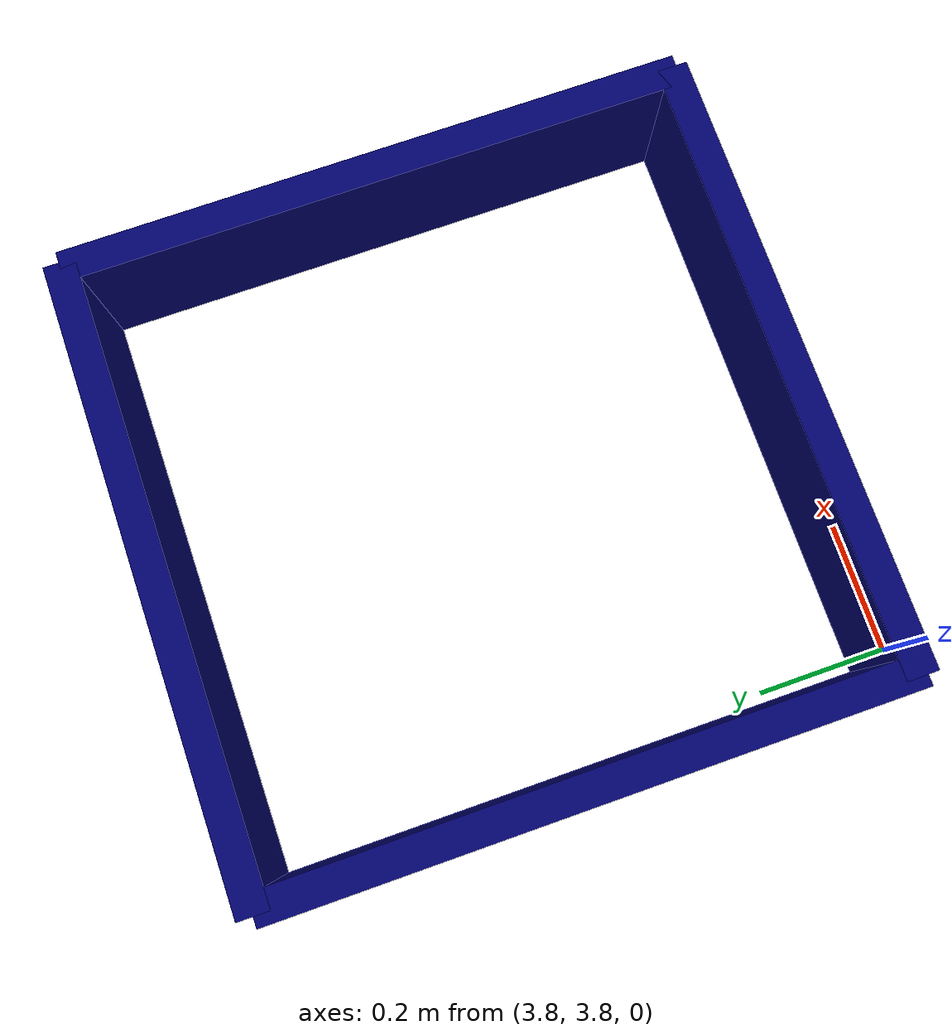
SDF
<?xml version='1.0'?>
<sdf version='1.7'>
<model name='dropoff'>
      <pose>4.25 3.8 0 0 -0 0</pose>
      <link name='Wall_0'>
        <collision name='Wall_5_Collision'>
          <geometry>
            <box>
              <size>1 0.05 0.25</size>
            </box>
          </geometry>
          <pose>0 0 0 0 -0 0</pose>
          <max_contacts>10</max_contacts>
          <surface>
            <contact>
              <ode/>
            </contact>
            <bounce/>
            <friction>
              <torsional>
                <ode/>
              </torsional>
              <ode/>
            </friction>
          </surface>
        </collision>
        <visual name='Wall_5_Visual'>
          <pose>0 0 0 0 -0 0</pose>
          <geometry>
            <box>
              <size>1 0.05 0.25</size>
            </box>
          </geometry>
          <material>
            <ambient>0 0 0.42 1</ambient>
            <diffuse>0 0 0.42 1</diffuse>
            <specular>0.1 0.1 0.1 1</specular>
          </material>
          <meta>
            <layer>0</layer>
          </meta>
        </visual>
        <pose>0 0 0 0 -0 0</pose>
        <self_collide>false</self_collide>
        <enable_wind>false</enable_wind>
        <kinematic>false</kinematic>
        <inertial>
          <pose>0 0 0 0 -0 0</pose>
          <mass>1</mass>
          <inertia>
            <ixx>1</ixx>
            <ixy>0</ixy>
            <ixz>0</ixz>
            <iyy>1</iyy>
            <iyz>0</iyz>
            <izz>1</izz>
          </inertia>
        </inertial>
      </link>
      <link name='Wall_6'>
        <collision name='Wall_6_Collision'>
          <geometry>
            <box>
              <size>1 0.05 0.25</size>
            </box>
          </geometry>
          <pose>0 0 0 0 -0 0</pose>
          <max_contacts>10</max_contacts>
          <surface>
            <contact>
              <ode/>
            </contact>
            <bounce/>
            <friction>
              <torsional>
                <ode/>
              </torsional>
              <ode/>
            </friction>
          </surface>
        </collision>
        <visual name='Wall_6_Visual'>
          <pose>0 0 0 0 -0 0</pose>
          <geometry>
            <box>
              <size>1 0.05 0.25</size>
            </box>
          </geometry>
          <material>
            <ambient>0 0 0.42 1</ambient>
            <diffuse>0 0 0.42 1</diffuse>
            <specular>0.1 0.1 0.1 1</specular>
          </material>
          <meta>
            <layer>0</layer>
          </meta>
        </visual>
        <pose>0.4925 0.4925 0 0 -0 1.5708</pose>
        <self_collide>false</self_collide>
        <enable_wind>false</enable_wind>
        <kinematic>false</kinematic>
        <inertial>
          <pose>0 0 0 0 -0 0</pose>
          <mass>1</mass>
          <inertia>
            <ixx>1</ixx>
            <ixy>0</ixy>
            <ixz>0</ixz>
            <iyy>1</iyy>
            <iyz>0</iyz>
            <izz>1</izz>
          </inertia>
        </inertial>
      </link>
      <link name='Wall_7'>
        <collision name='Wall_7_Collision'>
          <geometry>
            <box>
              <size>1 0.05 0.25</size>
            </box>
          </geometry>
          <pose>0 0 0 0 -0 0</pose>
          <max_contacts>10</max_contacts>
          <surface>
            <contact>
              <ode/>
            </contact>
            <bounce/>
            <friction>
              <torsional>
                <ode/>
              </torsional>
              <ode/>
            </friction>
          </surface>
        </collision>
        <visual name='Wall_7_Visual'>
          <pose>0 0 0 0 -0 0</pose>
          <geometry>
            <box>
              <size>1 0.05 0.25</size>
            </box>
          </geometry>
          <material>
            <ambient>0 0 0.42 1</ambient>
            <diffuse>0 0 0.42 1</diffuse>
            <specular>0.1 0.1 0.1 1</specular>
          </material>
          <meta>
            <layer>0</layer>
          </meta>
        </visual>
        <pose>0 0.9925 0 0 -0 3.14159</pose>
        <self_collide>false</self_collide>
        <enable_wind>false</enable_wind>
        <kinematic>false</kinematic>
        <inertial>
          <pose>0 0 0 0 -0 0</pose>
          <mass>1</mass>
          <inertia>
            <ixx>1</ixx>
            <ixy>0</ixy>
            <ixz>0</ixz>
            <iyy>1</iyy>
            <iyz>0</iyz>
            <izz>1</izz>
          </inertia>
        </inertial>
      </link>
      <link name='Wall_8'>
        <collision name='Wall_8_Collision'>
          <geometry>
            <box>
              <size>1 0.05 0.25</size>
            </box>
          </geometry>
          <pose>0 0 0 0 -0 0</pose>
          <max_contacts>10</max_contacts>
          <surface>
            <contact>
              <ode/>
            </contact>
            <bounce/>
            <friction>
              <torsional>
                <ode/>
              </torsional>
              <ode/>
            </friction>
          </surface>
        </collision>
        <visual name='Wall_8_Visual'>
          <pose>0 0 0 0 -0 0</pose>
          <geometry>
            <box>
              <size>1 0.05 0.25</size>
            </box>
          </geometry>
          <material>
            <ambient>0 0 0.42 1</ambient>
            <diffuse>0 0 0.42 1</diffuse>
            <specular>0.1 0.1 0.1 1</specular>
          </material>
          <meta>
            <layer>0</layer>
          </meta>
        </visual>
        <pose>-0.4925 0.4925 0 0 -0 1.5708</pose>
        <self_collide>false</self_collide>
        <enable_wind>false</enable_wind>
        <kinematic>false</kinematic>
        <inertial>
          <pose>0 0 0 0 -0 0</pose>
          <mass>1</mass>
          <inertia>
            <ixx>1</ixx>
            <ixy>0</ixy>
            <ixz>0</ixz>
            <iyy>1</iyy>
            <iyz>0</iyz>
            <izz>1</izz>
          </inertia>
        </inertial>
      </link>
      <static>true</static>
      <self_collide>false</self_collide>
</model>
</sdf>
